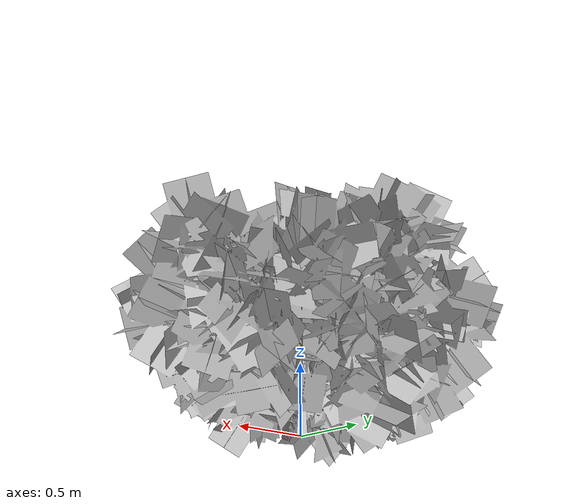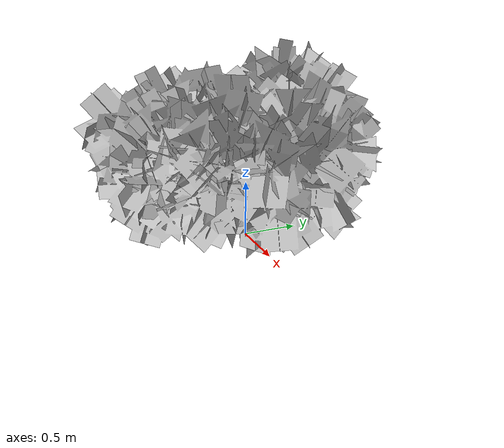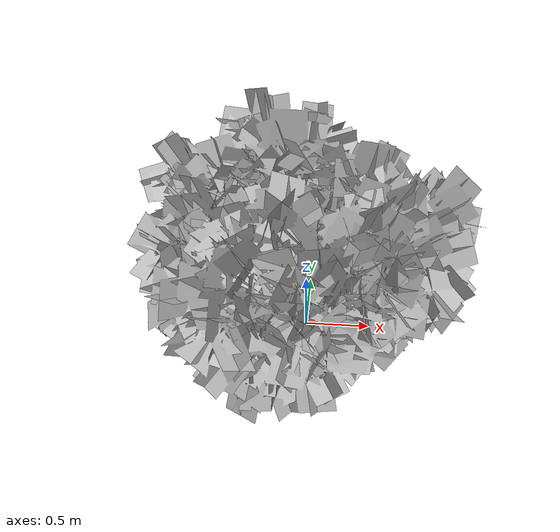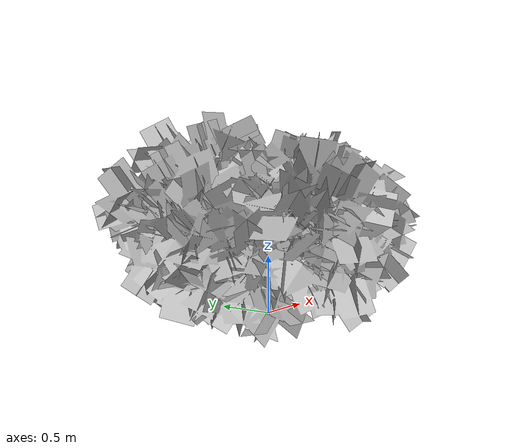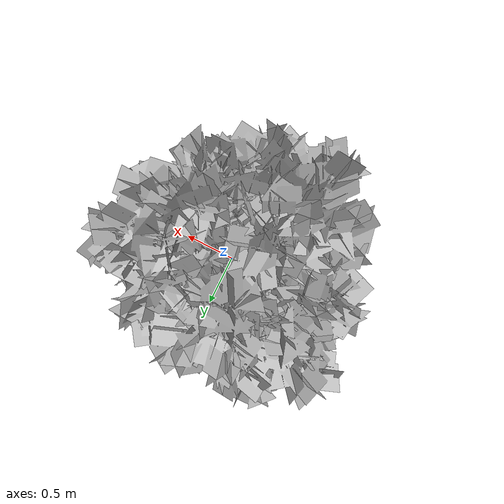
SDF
<?xml version="1.0" ?>
<sdf version="1.6">
  <model name="bush4">
    <static>1</static>
    <link name="link">
      <visual name="branch">
        <geometry>
          <mesh>
            <uri>model://bush4/meshes/OC29_4.obj</uri>
          </mesh>
        </geometry>
       <transparency>0.000</transparency>
        <cast_shadows>1</cast_shadows>
      </visual>
    </link>
  </model>
</sdf>
